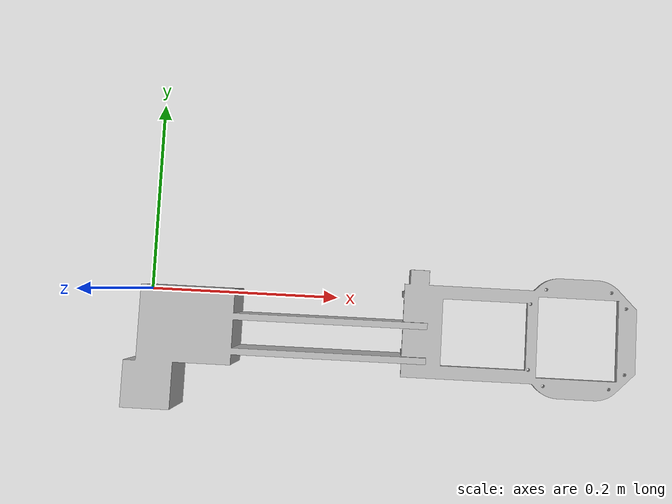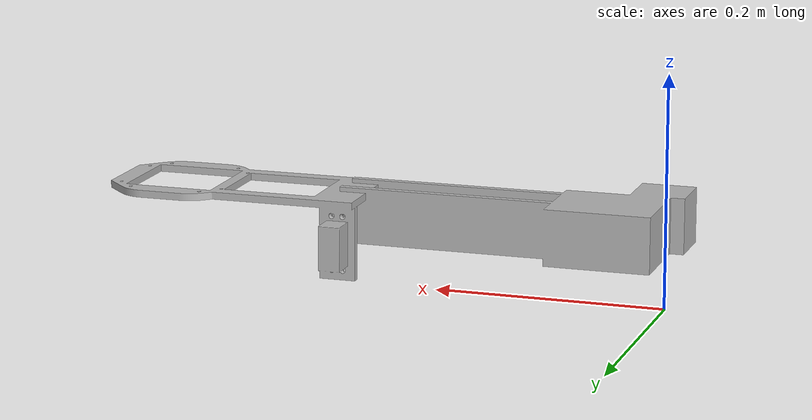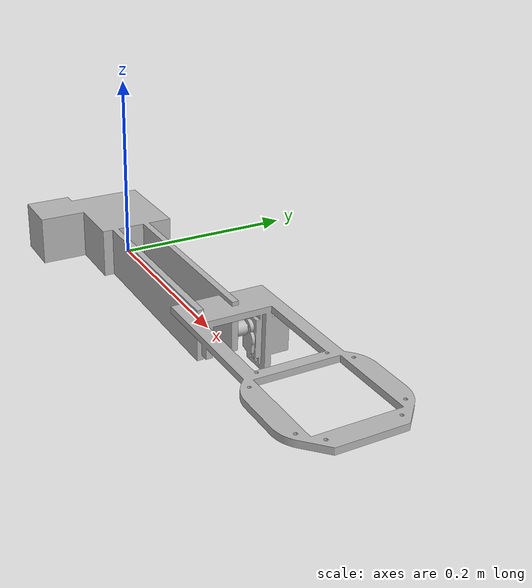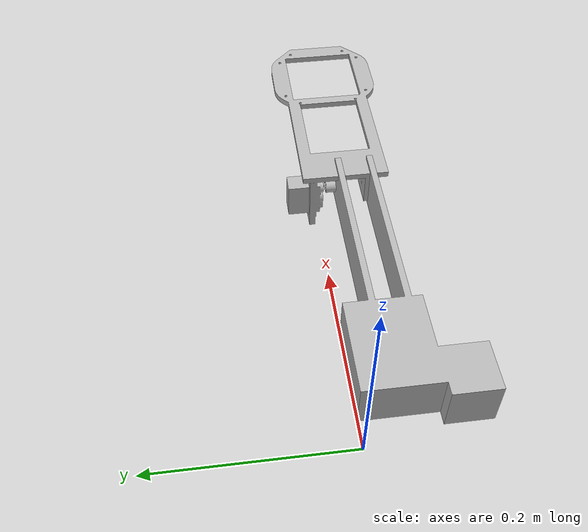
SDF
<?xml version="1.0"?>
<sdf version="1.5">
<model name = "PhytobiopsyAssembly">

<link name="Bottom">

<pose>0 -0.12 -0.11 0 0 0</pose>

<inertial>
<pose> 0.12 0.07 0.16 0 0 0</pose>
<mass> 0.15502294</mass>
<inertia>
<ixx>0.00016521</ixx>
<iyy>0.00074812</iyy>
<izz>0.00087562</izz>
<ixy>-0.00008580</ixy>
<ixz>0.00000674</ixz>
<iyz>-0.00000277</iyz>
</inertia>
</inertial>

<collision name="Bottom_collision">
<pose> 0 0.125 0.14 1.5708 0 0 </pose>
<geometry>
<mesh>
<uri>model://PhytobiopsyAssembly/meshes/mock_bottom.dae</uri>
</mesh>
</geometry>
</collision>

<visual name="Bottom_visual">
<geometry>
<mesh>
<uri>model://PhytobiopsyAssembly/meshes/bottom.dae</uri>
</mesh>
</geometry>
</visual>

</link>

<link name="Top">

<pose>0.2695 -0.119 -0.115 0 0 0</pose>

<inertial>
<pose> 0.115 0.07 0.16 0 0 0</pose>
<mass> 0.12067183</mass>
<inertia>
<ixx>0.00017544</ixx>
<iyy>0.00057466</iyy>
<izz>0.00065738</izz>
<ixy>-0.00009377</ixy>
<ixz>0.00009018</ixz>
<iyz>-0.00004054</iyz>
</inertia>
</inertial>

<collision name="Top_collision">
<geometry>
<mesh>
<uri>model://PhytobiopsyAssembly/meshes/top.dae</uri>
</mesh>
</geometry>
</collision>

<visual name="Top_visual">
<geometry>
<mesh>
<uri>model://PhytobiopsyAssembly/meshes/top.dae</uri>
</mesh>
</geometry>
</visual>

</link>

<joint name = "Arm_joint" type="revolute">

<pose>0.0175 0.065 0.1675 0 0 0</pose>
<child>Top</child>
<parent>Bottom</parent>
<axis>
<limit>
<upper>0</upper>
<lower>-3.141526</lower>
</limit>
<xyz>0 1 0</xyz>
<dynamics>
<friction>0.2</friction>
</dynamics>
</axis>
</joint>

<self_collide>true</self_collide>
</model>
</sdf>
